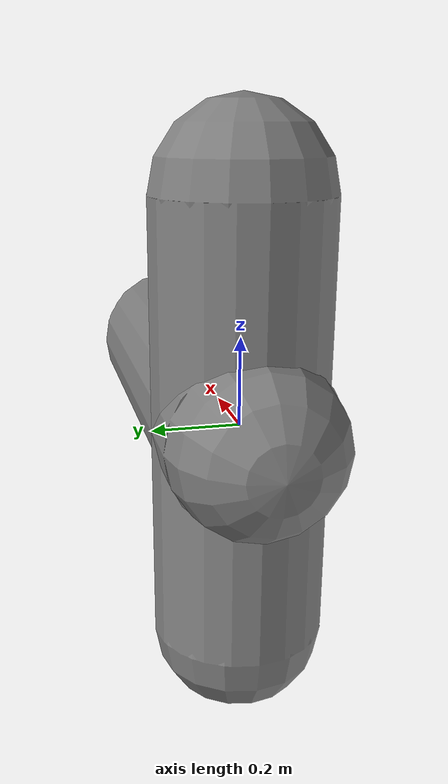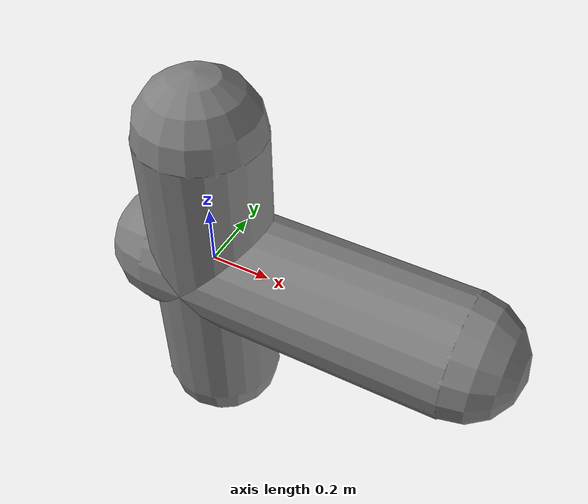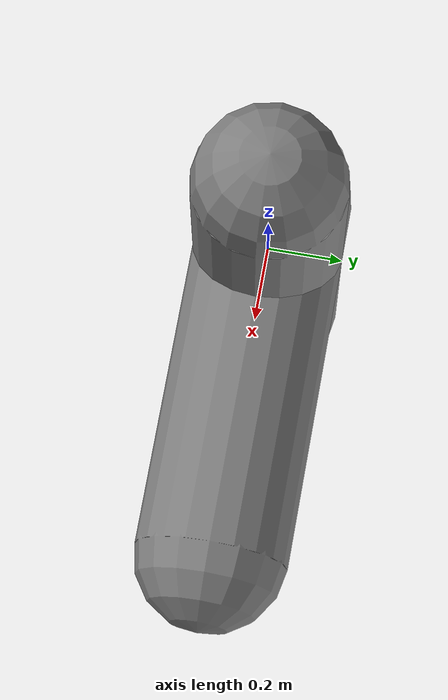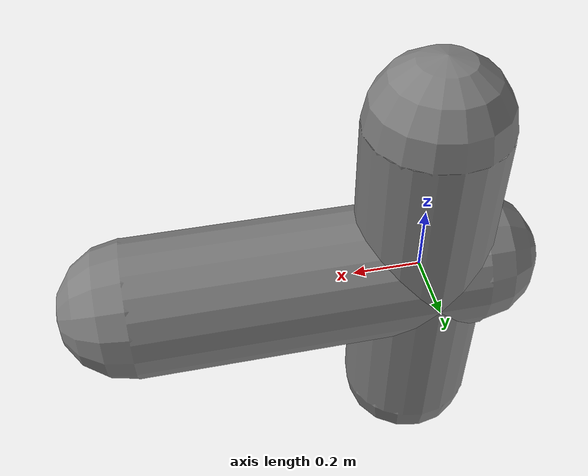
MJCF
<mujoco model="capsule_capsule_perp">
            <option gravity="0 0 0" timestep="0.001"/>
            <worldbody>
                <body name="cap1" pos="0 0 0">
                    <joint type="free"/>
                    <geom type="capsule" size="0.2 0.5"/>
                </body>
                <body name="cap2" pos="0.35 0 0" euler="0 90 0">
                    <joint type="free"/>
                    <geom type="capsule" size="0.2 0.5"/>
                </body>
            </worldbody>
        </mujoco>
